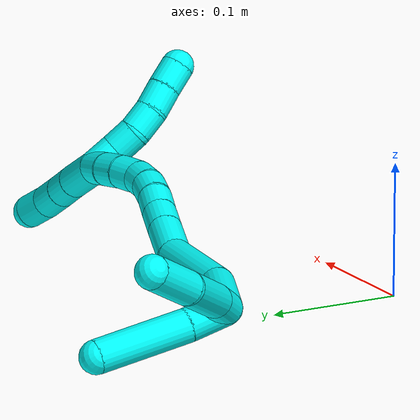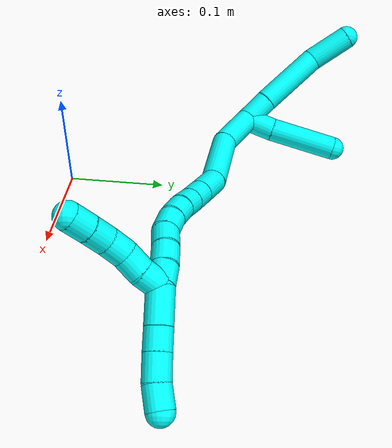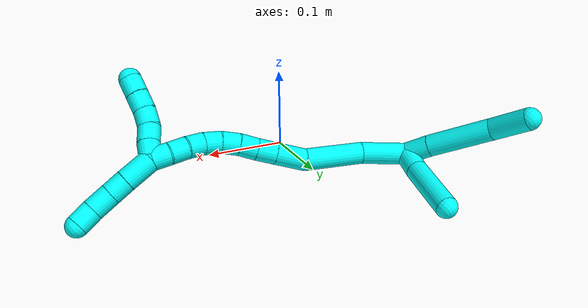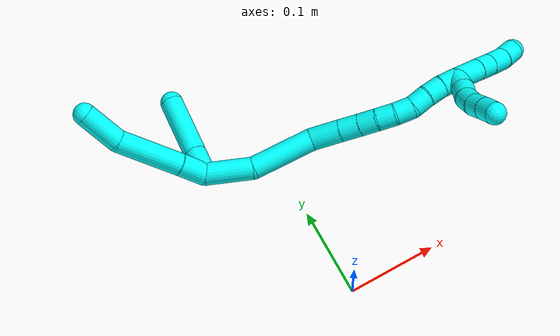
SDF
<sdf version="1.7">
 <world name="default">
  <model name="3">
   <static>0</static>
   <link name="3">
    <collision name="collision-cylinder-e_1_2_8">
     <pose>-0.000306 0.010463 0.01094 -0.763092 -0.020201 0.008105</pose>
     <geometry><cylinder><radius>0.0125</radius><length>0.030281</length></cylinder></geometry>
     <surface>
      <friction><ode><mu>1.16</mu><mu2>1.16</mu2><slip1>0</slip1><slip2>0</slip2></ode></friction>
      <contact><ode><kp>1e+06</kp><kd>1</kd><max_vel>0</max_vel><min_depth>0.001</min_depth></ode></contact>
     </surface>
    </collision>
    <visual name="visual-cylinder-e_1_2_8">
     <pose>-0.000306 0.010463 0.01094 -0.763092 -0.020201 0.008105</pose>
     <geometry><cylinder><radius>0.0125</radius><length>0.030281</length></cylinder></geometry>
     <material><ambient>0.003922 1 0.996078 1</ambient></material>
    </visual>
    <collision name="collision-cylinder-e_2_8_9">
     <pose>-0.003586 0.046892 0.047729 -0.787672 -0.081 0.033675</pose>
     <geometry><cylinder><radius>0.0125</radius><length>0.07352</length></cylinder></geometry>
     <surface>
      <friction><ode><mu>1.16</mu><mu2>1.16</mu2><slip1>0</slip1><slip2>0</slip2></ode></friction>
      <contact><ode><kp>1e+06</kp><kd>1</kd><max_vel>0</max_vel><min_depth>0.001</min_depth></ode></contact>
     </surface>
    </collision>
    <visual name="visual-cylinder-e_2_8_9">
     <pose>-0.003586 0.046892 0.047729 -0.787672 -0.081 0.033675</pose>
     <geometry><cylinder><radius>0.0125</radius><length>0.07352</length></cylinder></geometry>
     <material><ambient>0.003922 1 0.996078 1</ambient></material>
    </visual>
    <collision name="collision-cylinder-e_3_9_6">
     <pose>-0.0041 0.092621 0.085282 -1.03608 0.106693 -0.06085</pose>
     <geometry><cylinder><radius>0.0125</radius><length>0.046199</length></cylinder></geometry>
     <surface>
      <friction><ode><mu>1.16</mu><mu2>1.16</mu2><slip1>0</slip1><slip2>0</slip2></ode></friction>
      <contact><ode><kp>1e+06</kp><kd>1</kd><max_vel>0</max_vel><min_depth>0.001</min_depth></ode></contact>
     </surface>
    </collision>
    <visual name="visual-cylinder-e_3_9_6">
     <pose>-0.0041 0.092621 0.085282 -1.03608 0.106693 -0.06085</pose>
     <geometry><cylinder><radius>0.0125</radius><length>0.046199</length></cylinder></geometry>
     <material><ambient>0.003922 1 0.996078 1</ambient></material>
    </visual>
    <collision name="collision-cylinder-e_1_2_10">
     <pose>-0.004133 0.013507 -0.00496 -1.9227 -0.279704 0.397964</pose>
     <geometry><cylinder><radius>0.0125</radius><length>0.029941</length></cylinder></geometry>
     <surface>
      <friction><ode><mu>1.16</mu><mu2>1.16</mu2><slip1>0</slip1><slip2>0</slip2></ode></friction>
      <contact><ode><kp>1e+06</kp><kd>1</kd><max_vel>0</max_vel><min_depth>0.001</min_depth></ode></contact>
     </surface>
    </collision>
    <visual name="visual-cylinder-e_1_2_10">
     <pose>-0.004133 0.013507 -0.00496 -1.9227 -0.279704 0.397964</pose>
     <geometry><cylinder><radius>0.0125</radius><length>0.029941</length></cylinder></geometry>
     <material><ambient>0.003922 1 0.996078 1</ambient></material>
    </visual>
    <collision name="collision-cylinder-e_2_10_5">
     <pose>-0.015562 0.059897 -0.019538 -1.85537 -0.209831 0.279205</pose>
     <geometry><cylinder><radius>0.0125</radius><length>0.070059</length></cylinder></geometry>
     <surface>
      <friction><ode><mu>1.16</mu><mu2>1.16</mu2><slip1>0</slip1><slip2>0</slip2></ode></friction>
      <contact><ode><kp>1e+06</kp><kd>1</kd><max_vel>0</max_vel><min_depth>0.001</min_depth></ode></contact>
     </surface>
    </collision>
    <visual name="visual-cylinder-e_2_10_5">
     <pose>-0.015562 0.059897 -0.019538 -1.85537 -0.209831 0.279205</pose>
     <geometry><cylinder><radius>0.0125</radius><length>0.070059</length></cylinder></geometry>
     <material><ambient>0.003922 1 0.996078 1</ambient></material>
    </visual>
    <collision name="collision-cylinder-e_1_2_11">
     <pose>0.014849 -0.010742 -0.019205 2.63161 0.593587 1.72989</pose>
     <geometry><cylinder><radius>0.0125</radius><length>0.053093</length></cylinder></geometry>
     <surface>
      <friction><ode><mu>1.16</mu><mu2>1.16</mu2><slip1>0</slip1><slip2>0</slip2></ode></friction>
      <contact><ode><kp>1e+06</kp><kd>1</kd><max_vel>0</max_vel><min_depth>0.001</min_depth></ode></contact>
     </surface>
    </collision>
    <visual name="visual-cylinder-e_1_2_11">
     <pose>0.014849 -0.010742 -0.019205 2.63161 0.593587 1.72989</pose>
     <geometry><cylinder><radius>0.0125</radius><length>0.053093</length></cylinder></geometry>
     <material><ambient>0.003922 1 0.996078 1</ambient></material>
    </visual>
    <collision name="collision-cylinder-e_2_11_12">
     <pose>0.049947 -0.023972 -0.067248 3.05555 0.61047 2.87002</pose>
     <geometry><cylinder><radius>0.0125</radius><length>0.07065</length></cylinder></geometry>
     <surface>
      <friction><ode><mu>1.16</mu><mu2>1.16</mu2><slip1>0</slip1><slip2>0</slip2></ode></friction>
      <contact><ode><kp>1e+06</kp><kd>1</kd><max_vel>0</max_vel><min_depth>0.001</min_depth></ode></contact>
     </surface>
    </collision>
    <visual name="visual-cylinder-e_2_11_12">
     <pose>0.049947 -0.023972 -0.067248 3.05555 0.61047 2.87002</pose>
     <geometry><cylinder><radius>0.0125</radius><length>0.07065</length></cylinder></geometry>
     <material><ambient>0.003922 1 0.996078 1</ambient></material>
    </visual>
    <collision name="collision-cylinder-e_3_12_13">
     <pose>0.083012 -0.031005 -0.106247 2.72093 0.855569 2.26576</pose>
     <geometry><cylinder><radius>0.0125</radius><length>0.033947</length></cylinder></geometry>
     <surface>
      <friction><ode><mu>1.16</mu><mu2>1.16</mu2><slip1>0</slip1><slip2>0</slip2></ode></friction>
      <contact><ode><kp>1e+06</kp><kd>1</kd><max_vel>0</max_vel><min_depth>0.001</min_depth></ode></contact>
     </surface>
    </collision>
    <visual name="visual-cylinder-e_3_12_13">
     <pose>0.083012 -0.031005 -0.106247 2.72093 0.855569 2.26576</pose>
     <geometry><cylinder><radius>0.0125</radius><length>0.033947</length></cylinder></geometry>
     <material><ambient>0.003922 1 0.996078 1</ambient></material>
    </visual>
    <collision name="collision-cylinder-e_4_13_14">
     <pose>0.104203 -0.038589 -0.123011 2.71044 0.856125 2.24668</pose>
     <geometry><cylinder><radius>0.0125</radius><length>0.022183</length></cylinder></geometry>
     <surface>
      <friction><ode><mu>1.16</mu><mu2>1.16</mu2><slip1>0</slip1><slip2>0</slip2></ode></friction>
      <contact><ode><kp>1e+06</kp><kd>1</kd><max_vel>0</max_vel><min_depth>0.001</min_depth></ode></contact>
     </surface>
    </collision>
    <visual name="visual-cylinder-e_4_13_14">
     <pose>0.104203 -0.038589 -0.123011 2.71044 0.856125 2.24668</pose>
     <geometry><cylinder><radius>0.0125</radius><length>0.022183</length></cylinder></geometry>
     <material><ambient>0.003922 1 0.996078 1</ambient></material>
    </visual>
    <collision name="collision-cylinder-e_5_14_15">
     <pose>0.120454 -0.044345 -0.135204 2.6889 0.902589 2.25441</pose>
     <geometry><cylinder><radius>0.0125</radius><length>0.020061</length></cylinder></geometry>
     <surface>
      <friction><ode><mu>1.16</mu><mu2>1.16</mu2><slip1>0</slip1><slip2>0</slip2></ode></friction>
      <contact><ode><kp>1e+06</kp><kd>1</kd><max_vel>0</max_vel><min_depth>0.001</min_depth></ode></contact>
     </surface>
    </collision>
    <visual name="visual-cylinder-e_5_14_15">
     <pose>0.120454 -0.044345 -0.135204 2.6889 0.902589 2.25441</pose>
     <geometry><cylinder><radius>0.0125</radius><length>0.020061</length></cylinder></geometry>
     <material><ambient>0.003922 1 0.996078 1</ambient></material>
    </visual>
    <collision name="collision-cylinder-e_6_15_16">
     <pose>0.135303 -0.04957 -0.14754 2.78583 0.769674 2.30611</pose>
     <geometry><cylinder><radius>0.0125</radius><length>0.020048</length></cylinder></geometry>
     <surface>
      <friction><ode><mu>1.16</mu><mu2>1.16</mu2><slip1>0</slip1><slip2>0</slip2></ode></friction>
      <contact><ode><kp>1e+06</kp><kd>1</kd><max_vel>0</max_vel><min_depth>0.001</min_depth></ode></contact>
     </surface>
    </collision>
    <visual name="visual-cylinder-e_6_15_16">
     <pose>0.135303 -0.04957 -0.14754 2.78583 0.769674 2.30611</pose>
     <geometry><cylinder><radius>0.0125</radius><length>0.020048</length></cylinder></geometry>
     <material><ambient>0.003922 1 0.996078 1</ambient></material>
    </visual>
    <collision name="collision-cylinder-e_7_16_17">
     <pose>0.148048 -0.053627 -0.162313 2.95087 0.614632 2.55615</pose>
     <geometry><cylinder><radius>0.0125</radius><length>0.020009</length></cylinder></geometry>
     <surface>
      <friction><ode><mu>1.16</mu><mu2>1.16</mu2><slip1>0</slip1><slip2>0</slip2></ode></friction>
      <contact><ode><kp>1e+06</kp><kd>1</kd><max_vel>0</max_vel><min_depth>0.001</min_depth></ode></contact>
     </surface>
    </collision>
    <visual name="visual-cylinder-e_7_16_17">
     <pose>0.148048 -0.053627 -0.162313 2.95087 0.614632 2.55615</pose>
     <geometry><cylinder><radius>0.0125</radius><length>0.020009</length></cylinder></geometry>
     <material><ambient>0.003922 1 0.996078 1</ambient></material>
    </visual>
    <collision name="collision-cylinder-e_8_17_18">
     <pose>0.158887 -0.053645 -0.178824 -2.96306 0.531573 -2.50628</pose>
     <geometry><cylinder><radius>0.0125</radius><length>0.020004</length></cylinder></geometry>
     <surface>
      <friction><ode><mu>1.16</mu><mu2>1.16</mu2><slip1>0</slip1><slip2>0</slip2></ode></friction>
      <contact><ode><kp>1e+06</kp><kd>1</kd><max_vel>0</max_vel><min_depth>0.001</min_depth></ode></contact>
     </surface>
    </collision>
    <visual name="visual-cylinder-e_8_17_18">
     <pose>0.158887 -0.053645 -0.178824 -2.96306 0.531573 -2.50628</pose>
     <geometry><cylinder><radius>0.0125</radius><length>0.020004</length></cylinder></geometry>
     <material><ambient>0.003922 1 0.996078 1</ambient></material>
    </visual>
    <collision name="collision-cylinder-e_9_18_19">
     <pose>0.168117 -0.051404 -0.196376 -3.06346 0.428942 -2.78648</pose>
     <geometry><cylinder><radius>0.0125</radius><length>0.020003</length></cylinder></geometry>
     <surface>
      <friction><ode><mu>1.16</mu><mu2>1.16</mu2><slip1>0</slip1><slip2>0</slip2></ode></friction>
      <contact><ode><kp>1e+06</kp><kd>1</kd><max_vel>0</max_vel><min_depth>0.001</min_depth></ode></contact>
     </surface>
    </collision>
    <visual name="visual-cylinder-e_9_18_19">
     <pose>0.168117 -0.051404 -0.196376 -3.06346 0.428942 -2.78648</pose>
     <geometry><cylinder><radius>0.0125</radius><length>0.020003</length></cylinder></geometry>
     <material><ambient>0.003922 1 0.996078 1</ambient></material>
    </visual>
    <collision name="collision-cylinder-e_10_19_1">
     <pose>0.176199 -0.051212 -0.214628 3.08524 0.403074 2.86745</pose>
     <geometry><cylinder><radius>0.0125</radius><length>0.020001</length></cylinder></geometry>
     <surface>
      <friction><ode><mu>1.16</mu><mu2>1.16</mu2><slip1>0</slip1><slip2>0</slip2></ode></friction>
      <contact><ode><kp>1e+06</kp><kd>1</kd><max_vel>0</max_vel><min_depth>0.001</min_depth></ode></contact>
     </surface>
    </collision>
    <visual name="visual-cylinder-e_10_19_1">
     <pose>0.176199 -0.051212 -0.214628 3.08524 0.403074 2.86745</pose>
     <geometry><cylinder><radius>0.0125</radius><length>0.020001</length></cylinder></geometry>
     <material><ambient>0.003922 1 0.996078 1</ambient></material>
    </visual>
    <collision name="collision-cylinder-e_1_1_20">
     <pose>0.185193 -0.058851 -0.218957 0.972267 0.531878 0.285916</pose>
     <geometry><cylinder><radius>0.0125</radius><length>0.02</length></cylinder></geometry>
     <surface>
      <friction><ode><mu>1.16</mu><mu2>1.16</mu2><slip1>0</slip1><slip2>0</slip2></ode></friction>
      <contact><ode><kp>1e+06</kp><kd>1</kd><max_vel>0</max_vel><min_depth>0.001</min_depth></ode></contact>
     </surface>
    </collision>
    <visual name="visual-cylinder-e_1_1_20">
     <pose>0.185193 -0.058851 -0.218957 0.972267 0.531878 0.285916</pose>
     <geometry><cylinder><radius>0.0125</radius><length>0.02</length></cylinder></geometry>
     <material><ambient>0.003922 1 0.996078 1</ambient></material>
    </visual>
    <collision name="collision-cylinder-e_2_20_21">
     <pose>0.194978 -0.072018 -0.207681 0.755504 0.490765 0.198094</pose>
     <geometry><cylinder><radius>0.0125</radius><length>0.02</length></cylinder></geometry>
     <surface>
      <friction><ode><mu>1.16</mu><mu2>1.16</mu2><slip1>0</slip1><slip2>0</slip2></ode></friction>
      <contact><ode><kp>1e+06</kp><kd>1</kd><max_vel>0</max_vel><min_depth>0.001</min_depth></ode></contact>
     </surface>
    </collision>
    <visual name="visual-cylinder-e_2_20_21">
     <pose>0.194978 -0.072018 -0.207681 0.755504 0.490765 0.198094</pose>
     <geometry><cylinder><radius>0.0125</radius><length>0.02</length></cylinder></geometry>
     <material><ambient>0.003922 1 0.996078 1</ambient></material>
    </visual>
    <collision name="collision-cylinder-e_3_21_22">
     <pose>0.206381 -0.084251 -0.197139 0.983053 0.732831 0.405238</pose>
     <geometry><cylinder><radius>0.0125</radius><length>0.02</length></cylinder></geometry>
     <surface>
      <friction><ode><mu>1.16</mu><mu2>1.16</mu2><slip1>0</slip1><slip2>0</slip2></ode></friction>
      <contact><ode><kp>1e+06</kp><kd>1</kd><max_vel>0</max_vel><min_depth>0.001</min_depth></ode></contact>
     </surface>
    </collision>
    <visual name="visual-cylinder-e_3_21_22">
     <pose>0.206381 -0.084251 -0.197139 0.983053 0.732831 0.405238</pose>
     <geometry><cylinder><radius>0.0125</radius><length>0.02</length></cylinder></geometry>
     <material><ambient>0.003922 1 0.996078 1</ambient></material>
    </visual>
    <collision name="collision-cylinder-e_4_22_23">
     <pose>0.220894 -0.095918 -0.190061 1.07609 0.898413 0.560255</pose>
     <geometry><cylinder><radius>0.0125</radius><length>0.02</length></cylinder></geometry>
     <surface>
      <friction><ode><mu>1.16</mu><mu2>1.16</mu2><slip1>0</slip1><slip2>0</slip2></ode></friction>
      <contact><ode><kp>1e+06</kp><kd>1</kd><max_vel>0</max_vel><min_depth>0.001</min_depth></ode></contact>
     </surface>
    </collision>
    <visual name="visual-cylinder-e_4_22_23">
     <pose>0.220894 -0.095918 -0.190061 1.07609 0.898413 0.560255</pose>
     <geometry><cylinder><radius>0.0125</radius><length>0.02</length></cylinder></geometry>
     <material><ambient>0.003922 1 0.996078 1</ambient></material>
    </visual>
    <collision name="collision-cylinder-e_5_23_4">
     <pose>0.236294 -0.107228 -0.184166 1.10396 0.859741 0.550351</pose>
     <geometry><cylinder><radius>0.0125</radius><length>0.02</length></cylinder></geometry>
     <surface>
      <friction><ode><mu>1.16</mu><mu2>1.16</mu2><slip1>0</slip1><slip2>0</slip2></ode></friction>
      <contact><ode><kp>1e+06</kp><kd>1</kd><max_vel>0</max_vel><min_depth>0.001</min_depth></ode></contact>
     </surface>
    </collision>
    <visual name="visual-cylinder-e_5_23_4">
     <pose>0.236294 -0.107228 -0.184166 1.10396 0.859741 0.550351</pose>
     <geometry><cylinder><radius>0.0125</radius><length>0.02</length></cylinder></geometry>
     <material><ambient>0.003922 1 0.996078 1</ambient></material>
    </visual>
    <collision name="collision-cylinder-e_1_1_24">
     <pose>0.180251 -0.051809 -0.240564 3.13692 0.00771 2.05231</pose>
     <geometry><cylinder><radius>0.0125</radius><length>0.033504</length></cylinder></geometry>
     <surface>
      <friction><ode><mu>1.16</mu><mu2>1.16</mu2><slip1>0</slip1><slip2>0</slip2></ode></friction>
      <contact><ode><kp>1e+06</kp><kd>1</kd><max_vel>0</max_vel><min_depth>0.001</min_depth></ode></contact>
     </surface>
    </collision>
    <visual name="visual-cylinder-e_1_1_24">
     <pose>0.180251 -0.051809 -0.240564 3.13692 0.00771 2.05231</pose>
     <geometry><cylinder><radius>0.0125</radius><length>0.033504</length></cylinder></geometry>
     <material><ambient>0.003922 1 0.996078 1</ambient></material>
    </visual>
    <collision name="collision-cylinder-e_2_24_25">
     <pose>0.180157 -0.052044 -0.267542 3.12626 -0.021853 -1.91784</pose>
     <geometry><cylinder><radius>0.0125</radius><length>0.020461</length></cylinder></geometry>
     <surface>
      <friction><ode><mu>1.16</mu><mu2>1.16</mu2><slip1>0</slip1><slip2>0</slip2></ode></friction>
      <contact><ode><kp>1e+06</kp><kd>1</kd><max_vel>0</max_vel><min_depth>0.001</min_depth></ode></contact>
     </surface>
    </collision>
    <visual name="visual-cylinder-e_2_24_25">
     <pose>0.180157 -0.052044 -0.267542 3.12626 -0.021853 -1.91784</pose>
     <geometry><cylinder><radius>0.0125</radius><length>0.020461</length></cylinder></geometry>
     <material><ambient>0.003922 1 0.996078 1</ambient></material>
    </visual>
    <collision name="collision-cylinder-e_3_25_26">
     <pose>0.179749 -0.052084 -0.289812 -3.13195 -0.015323 2.01797</pose>
     <geometry><cylinder><radius>0.0125</radius><length>0.024089</length></cylinder></geometry>
     <surface>
      <friction><ode><mu>1.16</mu><mu2>1.16</mu2><slip1>0</slip1><slip2>0</slip2></ode></friction>
      <contact><ode><kp>1e+06</kp><kd>1</kd><max_vel>0</max_vel><min_depth>0.001</min_depth></ode></contact>
     </surface>
    </collision>
    <visual name="visual-cylinder-e_3_25_26">
     <pose>0.179749 -0.052084 -0.289812 -3.13195 -0.015323 2.01797</pose>
     <geometry><cylinder><radius>0.0125</radius><length>0.024089</length></cylinder></geometry>
     <material><ambient>0.003922 1 0.996078 1</ambient></material>
    </visual>
    <collision name="collision-cylinder-e_4_26_3">
     <pose>0.179352 -0.050015 -0.31265 -2.96259 -0.019304 0.214286</pose>
     <geometry><cylinder><radius>0.0125</radius><length>0.021946</length></cylinder></geometry>
     <surface>
      <friction><ode><mu>1.16</mu><mu2>1.16</mu2><slip1>0</slip1><slip2>0</slip2></ode></friction>
      <contact><ode><kp>1e+06</kp><kd>1</kd><max_vel>0</max_vel><min_depth>0.001</min_depth></ode></contact>
     </surface>
    </collision>
    <visual name="visual-cylinder-e_4_26_3">
     <pose>0.179352 -0.050015 -0.31265 -2.96259 -0.019304 0.214286</pose>
     <geometry><cylinder><radius>0.0125</radius><length>0.021946</length></cylinder></geometry>
     <material><ambient>0.003922 1 0.996078 1</ambient></material>
    </visual>
    <collision name="collision-sphere-3">
     <pose>0.17914 -0.048061 -0.323445 0 -0 0</pose>
     <geometry><sphere><radius>0.0125</radius></sphere></geometry>
     <surface>
      <friction><ode><mu>1.16</mu><mu2>1.16</mu2><slip1>0</slip1><slip2>0</slip2></ode></friction>
      <contact><ode><kp>1e+06</kp><kd>1</kd><max_vel>0</max_vel><min_depth>0.001</min_depth></ode></contact>
     </surface>
    </collision>
    <visual name="visual-sphere-3">
     <pose>0.17914 -0.048061 -0.323445 0 -0 0</pose>
     <geometry><sphere><radius>0.0125</radius></sphere></geometry>
     <material><ambient>0.003922 1 0.996078 1</ambient></material>
    </visual>
    <collision name="collision-sphere-26">
     <pose>0.179564 -0.051968 -0.301854 0 -0 0</pose>
     <geometry><sphere><radius>0.0125</radius></sphere></geometry>
     <surface>
      <friction><ode><mu>1.16</mu><mu2>1.16</mu2><slip1>0</slip1><slip2>0</slip2></ode></friction>
      <contact><ode><kp>1e+06</kp><kd>1</kd><max_vel>0</max_vel><min_depth>0.001</min_depth></ode></contact>
     </surface>
    </collision>
    <visual name="visual-sphere-26">
     <pose>0.179564 -0.051968 -0.301854 0 -0 0</pose>
     <geometry><sphere><radius>0.0125</radius></sphere></geometry>
     <material><ambient>0.003922 1 0.996078 1</ambient></material>
    </visual>
    <collision name="collision-sphere-25">
     <pose>0.179933 -0.0522 -0.277769 0 -0 0</pose>
     <geometry><sphere><radius>0.0125</radius></sphere></geometry>
     <surface>
      <friction><ode><mu>1.16</mu><mu2>1.16</mu2><slip1>0</slip1><slip2>0</slip2></ode></friction>
      <contact><ode><kp>1e+06</kp><kd>1</kd><max_vel>0</max_vel><min_depth>0.001</min_depth></ode></contact>
     </surface>
    </collision>
    <visual name="visual-sphere-25">
     <pose>0.179933 -0.0522 -0.277769 0 -0 0</pose>
     <geometry><sphere><radius>0.0125</radius></sphere></geometry>
     <material><ambient>0.003922 1 0.996078 1</ambient></material>
    </visual>
    <collision name="collision-sphere-24">
     <pose>0.18038 -0.051887 -0.257316 0 -0 0</pose>
     <geometry><sphere><radius>0.0125</radius></sphere></geometry>
     <surface>
      <friction><ode><mu>1.16</mu><mu2>1.16</mu2><slip1>0</slip1><slip2>0</slip2></ode></friction>
      <contact><ode><kp>1e+06</kp><kd>1</kd><max_vel>0</max_vel><min_depth>0.001</min_depth></ode></contact>
     </surface>
    </collision>
    <visual name="visual-sphere-24">
     <pose>0.18038 -0.051887 -0.257316 0 -0 0</pose>
     <geometry><sphere><radius>0.0125</radius></sphere></geometry>
     <material><ambient>0.003922 1 0.996078 1</ambient></material>
    </visual>
    <collision name="collision-sphere-4">
     <pose>0.243871 -0.113056 -0.181229 0 -0 0</pose>
     <geometry><sphere><radius>0.0125</radius></sphere></geometry>
     <surface>
      <friction><ode><mu>1.16</mu><mu2>1.16</mu2><slip1>0</slip1><slip2>0</slip2></ode></friction>
      <contact><ode><kp>1e+06</kp><kd>1</kd><max_vel>0</max_vel><min_depth>0.001</min_depth></ode></contact>
     </surface>
    </collision>
    <visual name="visual-sphere-4">
     <pose>0.243871 -0.113056 -0.181229 0 -0 0</pose>
     <geometry><sphere><radius>0.0125</radius></sphere></geometry>
     <material><ambient>0.003922 1 0.996078 1</ambient></material>
    </visual>
    <collision name="collision-sphere-23">
     <pose>0.228717 -0.1014 -0.187104 0 -0 0</pose>
     <geometry><sphere><radius>0.0125</radius></sphere></geometry>
     <surface>
      <friction><ode><mu>1.16</mu><mu2>1.16</mu2><slip1>0</slip1><slip2>0</slip2></ode></friction>
      <contact><ode><kp>1e+06</kp><kd>1</kd><max_vel>0</max_vel><min_depth>0.001</min_depth></ode></contact>
     </surface>
    </collision>
    <visual name="visual-sphere-23">
     <pose>0.228717 -0.1014 -0.187104 0 -0 0</pose>
     <geometry><sphere><radius>0.0125</radius></sphere></geometry>
     <material><ambient>0.003922 1 0.996078 1</ambient></material>
    </visual>
    <collision name="collision-sphere-22">
     <pose>0.21307 -0.090437 -0.193018 0 -0 0</pose>
     <geometry><sphere><radius>0.0125</radius></sphere></geometry>
     <surface>
      <friction><ode><mu>1.16</mu><mu2>1.16</mu2><slip1>0</slip1><slip2>0</slip2></ode></friction>
      <contact><ode><kp>1e+06</kp><kd>1</kd><max_vel>0</max_vel><min_depth>0.001</min_depth></ode></contact>
     </surface>
    </collision>
    <visual name="visual-sphere-22">
     <pose>0.21307 -0.090437 -0.193018 0 -0 0</pose>
     <geometry><sphere><radius>0.0125</radius></sphere></geometry>
     <material><ambient>0.003922 1 0.996078 1</ambient></material>
    </visual>
    <collision name="collision-sphere-21">
     <pose>0.199691 -0.078066 -0.201261 0 -0 0</pose>
     <geometry><sphere><radius>0.0125</radius></sphere></geometry>
     <surface>
      <friction><ode><mu>1.16</mu><mu2>1.16</mu2><slip1>0</slip1><slip2>0</slip2></ode></friction>
      <contact><ode><kp>1e+06</kp><kd>1</kd><max_vel>0</max_vel><min_depth>0.001</min_depth></ode></contact>
     </surface>
    </collision>
    <visual name="visual-sphere-21">
     <pose>0.199691 -0.078066 -0.201261 0 -0 0</pose>
     <geometry><sphere><radius>0.0125</radius></sphere></geometry>
     <material><ambient>0.003922 1 0.996078 1</ambient></material>
    </visual>
    <collision name="collision-sphere-20">
     <pose>0.190265 -0.065971 -0.214101 0 -0 0</pose>
     <geometry><sphere><radius>0.0125</radius></sphere></geometry>
     <surface>
      <friction><ode><mu>1.16</mu><mu2>1.16</mu2><slip1>0</slip1><slip2>0</slip2></ode></friction>
      <contact><ode><kp>1e+06</kp><kd>1</kd><max_vel>0</max_vel><min_depth>0.001</min_depth></ode></contact>
     </surface>
    </collision>
    <visual name="visual-sphere-20">
     <pose>0.190265 -0.065971 -0.214101 0 -0 0</pose>
     <geometry><sphere><radius>0.0125</radius></sphere></geometry>
     <material><ambient>0.003922 1 0.996078 1</ambient></material>
    </visual>
    <collision name="collision-sphere-5">
     <pose>-0.022859 0.09278 -0.029156 0 -0 0</pose>
     <geometry><sphere><radius>0.0125</radius></sphere></geometry>
     <surface>
      <friction><ode><mu>1.16</mu><mu2>1.16</mu2><slip1>0</slip1><slip2>0</slip2></ode></friction>
      <contact><ode><kp>1e+06</kp><kd>1</kd><max_vel>0</max_vel><min_depth>0.001</min_depth></ode></contact>
     </surface>
    </collision>
    <visual name="visual-sphere-5">
     <pose>-0.022859 0.09278 -0.029156 0 -0 0</pose>
     <geometry><sphere><radius>0.0125</radius></sphere></geometry>
     <material><ambient>0.003922 1 0.996078 1</ambient></material>
    </visual>
    <collision name="collision-sphere-10">
     <pose>-0.008266 0.027014 -0.009919 0 -0 0</pose>
     <geometry><sphere><radius>0.0125</radius></sphere></geometry>
     <surface>
      <friction><ode><mu>1.16</mu><mu2>1.16</mu2><slip1>0</slip1><slip2>0</slip2></ode></friction>
      <contact><ode><kp>1e+06</kp><kd>1</kd><max_vel>0</max_vel><min_depth>0.001</min_depth></ode></contact>
     </surface>
    </collision>
    <visual name="visual-sphere-10">
     <pose>-0.008266 0.027014 -0.009919 0 -0 0</pose>
     <geometry><sphere><radius>0.0125</radius></sphere></geometry>
     <material><ambient>0.003922 1 0.996078 1</ambient></material>
    </visual>
    <collision name="collision-sphere-6">
     <pose>-0.001641 0.112383 0.096987 0 -0 0</pose>
     <geometry><sphere><radius>0.0125</radius></sphere></geometry>
     <surface>
      <friction><ode><mu>1.16</mu><mu2>1.16</mu2><slip1>0</slip1><slip2>0</slip2></ode></friction>
      <contact><ode><kp>1e+06</kp><kd>1</kd><max_vel>0</max_vel><min_depth>0.001</min_depth></ode></contact>
     </surface>
    </collision>
    <visual name="visual-sphere-6">
     <pose>-0.001641 0.112383 0.096987 0 -0 0</pose>
     <geometry><sphere><radius>0.0125</radius></sphere></geometry>
     <material><ambient>0.003922 1 0.996078 1</ambient></material>
    </visual>
    <collision name="collision-sphere-9">
     <pose>-0.00656 0.072859 0.073578 0 -0 0</pose>
     <geometry><sphere><radius>0.0125</radius></sphere></geometry>
     <surface>
      <friction><ode><mu>1.16</mu><mu2>1.16</mu2><slip1>0</slip1><slip2>0</slip2></ode></friction>
      <contact><ode><kp>1e+06</kp><kd>1</kd><max_vel>0</max_vel><min_depth>0.001</min_depth></ode></contact>
     </surface>
    </collision>
    <visual name="visual-sphere-9">
     <pose>-0.00656 0.072859 0.073578 0 -0 0</pose>
     <geometry><sphere><radius>0.0125</radius></sphere></geometry>
     <material><ambient>0.003922 1 0.996078 1</ambient></material>
    </visual>
    <collision name="collision-sphere-2">
     <geometry><sphere><radius>0.0125</radius></sphere></geometry>
     <surface>
      <friction><ode><mu>1.16</mu><mu2>1.16</mu2><slip1>0</slip1><slip2>0</slip2></ode></friction>
      <contact><ode><kp>1e+06</kp><kd>1</kd><max_vel>0</max_vel><min_depth>0.001</min_depth></ode></contact>
     </surface>
    </collision>
    <visual name="visual-sphere-2">
     <geometry><sphere><radius>0.0125</radius></sphere></geometry>
     <material><ambient>0.003922 1 0.996078 1</ambient></material>
    </visual>
    <collision name="collision-sphere-19">
     <pose>0.172277 -0.050694 -0.205444 0 -0 0</pose>
     <geometry><sphere><radius>0.0125</radius></sphere></geometry>
     <surface>
      <friction><ode><mu>1.16</mu><mu2>1.16</mu2><slip1>0</slip1><slip2>0</slip2></ode></friction>
      <contact><ode><kp>1e+06</kp><kd>1</kd><max_vel>0</max_vel><min_depth>0.001</min_depth></ode></contact>
     </surface>
    </collision>
    <visual name="visual-sphere-19">
     <pose>0.172277 -0.050694 -0.205444 0 -0 0</pose>
     <geometry><sphere><radius>0.0125</radius></sphere></geometry>
     <material><ambient>0.003922 1 0.996078 1</ambient></material>
    </visual>
    <collision name="collision-sphere-8">
     <pose>-0.000612 0.020925 0.02188 0 -0 0</pose>
     <geometry><sphere><radius>0.0125</radius></sphere></geometry>
     <surface>
      <friction><ode><mu>1.16</mu><mu2>1.16</mu2><slip1>0</slip1><slip2>0</slip2></ode></friction>
      <contact><ode><kp>1e+06</kp><kd>1</kd><max_vel>0</max_vel><min_depth>0.001</min_depth></ode></contact>
     </surface>
    </collision>
    <visual name="visual-sphere-8">
     <pose>-0.000612 0.020925 0.02188 0 -0 0</pose>
     <geometry><sphere><radius>0.0125</radius></sphere></geometry>
     <material><ambient>0.003922 1 0.996078 1</ambient></material>
    </visual>
    <collision name="collision-sphere-11">
     <pose>0.029697 -0.021485 -0.038411 0 -0 0</pose>
     <geometry><sphere><radius>0.0125</radius></sphere></geometry>
     <surface>
      <friction><ode><mu>1.16</mu><mu2>1.16</mu2><slip1>0</slip1><slip2>0</slip2></ode></friction>
      <contact><ode><kp>1e+06</kp><kd>1</kd><max_vel>0</max_vel><min_depth>0.001</min_depth></ode></contact>
     </surface>
    </collision>
    <visual name="visual-sphere-11">
     <pose>0.029697 -0.021485 -0.038411 0 -0 0</pose>
     <geometry><sphere><radius>0.0125</radius></sphere></geometry>
     <material><ambient>0.003922 1 0.996078 1</ambient></material>
    </visual>
    <collision name="collision-sphere-12">
     <pose>0.070198 -0.02646 -0.096086 0 -0 0</pose>
     <geometry><sphere><radius>0.0125</radius></sphere></geometry>
     <surface>
      <friction><ode><mu>1.16</mu><mu2>1.16</mu2><slip1>0</slip1><slip2>0</slip2></ode></friction>
      <contact><ode><kp>1e+06</kp><kd>1</kd><max_vel>0</max_vel><min_depth>0.001</min_depth></ode></contact>
     </surface>
    </collision>
    <visual name="visual-sphere-12">
     <pose>0.070198 -0.02646 -0.096086 0 -0 0</pose>
     <geometry><sphere><radius>0.0125</radius></sphere></geometry>
     <material><ambient>0.003922 1 0.996078 1</ambient></material>
    </visual>
    <collision name="collision-sphere-13">
     <pose>0.095826 -0.035551 -0.116407 0 -0 0</pose>
     <geometry><sphere><radius>0.0125</radius></sphere></geometry>
     <surface>
      <friction><ode><mu>1.16</mu><mu2>1.16</mu2><slip1>0</slip1><slip2>0</slip2></ode></friction>
      <contact><ode><kp>1e+06</kp><kd>1</kd><max_vel>0</max_vel><min_depth>0.001</min_depth></ode></contact>
     </surface>
    </collision>
    <visual name="visual-sphere-13">
     <pose>0.095826 -0.035551 -0.116407 0 -0 0</pose>
     <geometry><sphere><radius>0.0125</radius></sphere></geometry>
     <material><ambient>0.003922 1 0.996078 1</ambient></material>
    </visual>
    <collision name="collision-sphere-14">
     <pose>0.112581 -0.041626 -0.129615 0 -0 0</pose>
     <geometry><sphere><radius>0.0125</radius></sphere></geometry>
     <surface>
      <friction><ode><mu>1.16</mu><mu2>1.16</mu2><slip1>0</slip1><slip2>0</slip2></ode></friction>
      <contact><ode><kp>1e+06</kp><kd>1</kd><max_vel>0</max_vel><min_depth>0.001</min_depth></ode></contact>
     </surface>
    </collision>
    <visual name="visual-sphere-14">
     <pose>0.112581 -0.041626 -0.129615 0 -0 0</pose>
     <geometry><sphere><radius>0.0125</radius></sphere></geometry>
     <material><ambient>0.003922 1 0.996078 1</ambient></material>
    </visual>
    <collision name="collision-sphere-15">
     <pose>0.128328 -0.047063 -0.140793 0 -0 0</pose>
     <geometry><sphere><radius>0.0125</radius></sphere></geometry>
     <surface>
      <friction><ode><mu>1.16</mu><mu2>1.16</mu2><slip1>0</slip1><slip2>0</slip2></ode></friction>
      <contact><ode><kp>1e+06</kp><kd>1</kd><max_vel>0</max_vel><min_depth>0.001</min_depth></ode></contact>
     </surface>
    </collision>
    <visual name="visual-sphere-15">
     <pose>0.128328 -0.047063 -0.140793 0 -0 0</pose>
     <geometry><sphere><radius>0.0125</radius></sphere></geometry>
     <material><ambient>0.003922 1 0.996078 1</ambient></material>
    </visual>
    <collision name="collision-sphere-16">
     <pose>0.142279 -0.052078 -0.154288 0 -0 0</pose>
     <geometry><sphere><radius>0.0125</radius></sphere></geometry>
     <surface>
      <friction><ode><mu>1.16</mu><mu2>1.16</mu2><slip1>0</slip1><slip2>0</slip2></ode></friction>
      <contact><ode><kp>1e+06</kp><kd>1</kd><max_vel>0</max_vel><min_depth>0.001</min_depth></ode></contact>
     </surface>
    </collision>
    <visual name="visual-sphere-16">
     <pose>0.142279 -0.052078 -0.154288 0 -0 0</pose>
     <geometry><sphere><radius>0.0125</radius></sphere></geometry>
     <material><ambient>0.003922 1 0.996078 1</ambient></material>
    </visual>
    <collision name="collision-sphere-17">
     <pose>0.153817 -0.055176 -0.170339 0 -0 0</pose>
     <geometry><sphere><radius>0.0125</radius></sphere></geometry>
     <surface>
      <friction><ode><mu>1.16</mu><mu2>1.16</mu2><slip1>0</slip1><slip2>0</slip2></ode></friction>
      <contact><ode><kp>1e+06</kp><kd>1</kd><max_vel>0</max_vel><min_depth>0.001</min_depth></ode></contact>
     </surface>
    </collision>
    <visual name="visual-sphere-17">
     <pose>0.153817 -0.055176 -0.170339 0 -0 0</pose>
     <geometry><sphere><radius>0.0125</radius></sphere></geometry>
     <material><ambient>0.003922 1 0.996078 1</ambient></material>
    </visual>
    <collision name="collision-sphere-18">
     <pose>0.163957 -0.052114 -0.187309 0 -0 0</pose>
     <geometry><sphere><radius>0.0125</radius></sphere></geometry>
     <surface>
      <friction><ode><mu>1.16</mu><mu2>1.16</mu2><slip1>0</slip1><slip2>0</slip2></ode></friction>
      <contact><ode><kp>1e+06</kp><kd>1</kd><max_vel>0</max_vel><min_depth>0.001</min_depth></ode></contact>
     </surface>
    </collision>
    <visual name="visual-sphere-18">
     <pose>0.163957 -0.052114 -0.187309 0 -0 0</pose>
     <geometry><sphere><radius>0.0125</radius></sphere></geometry>
     <material><ambient>0.003922 1 0.996078 1</ambient></material>
    </visual>
    <collision name="collision-sphere-1">
     <pose>0.180122 -0.05173 -0.223813 0 -0 0</pose>
     <geometry><sphere><radius>0.0125</radius></sphere></geometry>
     <surface>
      <friction><ode><mu>1.16</mu><mu2>1.16</mu2><slip1>0</slip1><slip2>0</slip2></ode></friction>
      <contact><ode><kp>1e+06</kp><kd>1</kd><max_vel>0</max_vel><min_depth>0.001</min_depth></ode></contact>
     </surface>
    </collision>
    <visual name="visual-sphere-1">
     <pose>0.180122 -0.05173 -0.223813 0 -0 0</pose>
     <geometry><sphere><radius>0.0125</radius></sphere></geometry>
     <material><ambient>0.003922 1 0.996078 1</ambient></material>
    </visual>
    <inertial>
     <pose>0.086391 -0.014839 -0.098528 0 -0 0</pose>
     <mass>0.75</mass>
     <inertia>
      <ixx>0.000107</ixx>
      <ixy>0</ixy>
      <ixz>0</ixz>
      <iyy>0.000131</iyy>
      <iyz>0</iyz>
      <izz>-0.000102</izz>
     </inertia>
    </inertial>
   </link>
   <pose>-0.079895 0.184072 0.038457 0.214684 -0.998042 -0.153379</pose>
  </model>
 </world>
</sdf>
